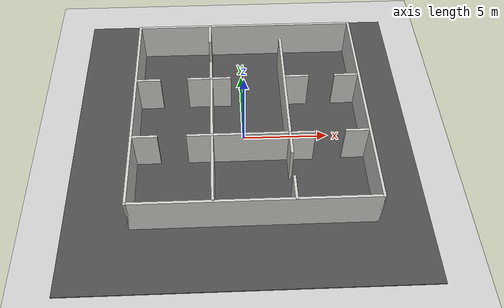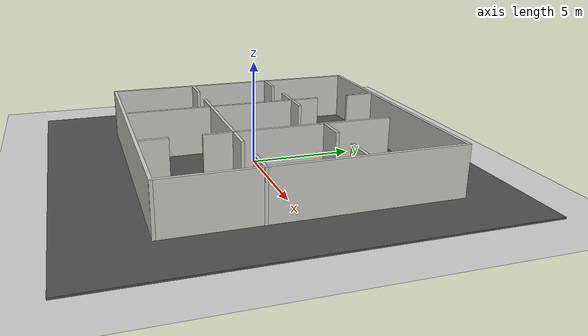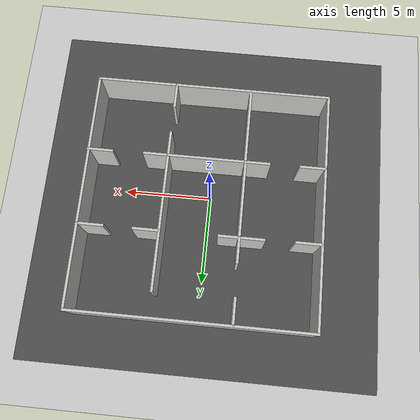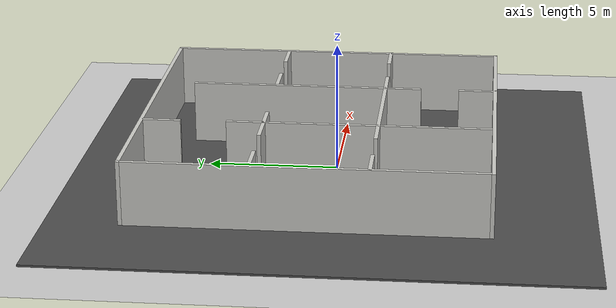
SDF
<sdf version="1.6">
 <world name="default">
  <model name="ground_plane">
   <static>1</static>
   <link name="link">
    <collision name="collision">
     <geometry><plane><normal>0 0 1</normal><size>100 100</size></plane></geometry>
     <surface><friction><ode><mu>100</mu><mu2>50</mu2></ode></friction></surface>
    </collision>
    <visual name="visual">
     <cast_shadows>0</cast_shadows>
     <geometry><plane><normal>0 0 1</normal><size>100 100</size></plane></geometry>
     <material>
      <script><uri>file://media/materials/scripts/gazebo.material</uri><name>Gazebo/Grey</name></script>
     </material>
    </visual>
   </link>
  </model>
  <gravity>0 0 -9.8</gravity>
  <magnetic_field>6e-06 2.3e-05 -4.2e-05</magnetic_field>
  <atmosphere type="adiabatic"/>
  <physics name="default_physics" default="0" type="ode">
   <max_step_size>0.001</max_step_size>
   <real_time_factor>1</real_time_factor>
   <real_time_update_rate>1000</real_time_update_rate>
  </physics>
  <scene><ambient>0.4 0.4 0.4 1</ambient><background>0.7 0.7 0.7 1</background><shadows>1</shadows></scene>
  <spherical_coordinates>
   <surface_model>EARTH_WGS84</surface_model>
   <latitude_deg>0</latitude_deg>
   <longitude_deg>0</longitude_deg>
   <elevation>0</elevation>
   <heading_deg>0</heading_deg>
  </spherical_coordinates>
  <model name="NewWorldSimple">
   <pose>0.34924 0.631189 0 0 -0 0</pose>
   <link name="Wall_1">
    <collision name="Wall_1_Collision">
     <geometry><box><size>13.5 0.15 2.5</size></box></geometry>
     <pose>0 0 1.25 0 -0 0</pose>
    </collision>
    <visual name="Wall_1_Visual">
     <pose>0 0 1.25 0 -0 0</pose>
     <geometry><box><size>13.5 0.15 2.5</size></box></geometry>
     <material>
      <script><uri>file://media/materials/scripts/gazebo.material</uri><name>Gazebo/CeilingTiled</name></script>
      <ambient>1 1 1 1</ambient>
     </material>
     <meta><layer>0</layer></meta>
    </visual>
    <pose>-6.68859 0 0 0 0 -1.5708</pose>
   </link>
   <link name="Wall_14">
    <collision name="Wall_14_Collision">
     <geometry><box><size>1.5 0.15 2.5</size></box></geometry>
     <pose>0 0 1.25 0 -0 0</pose>
    </collision>
    <visual name="Wall_14_Visual">
     <pose>0 0 1.25 0 -0 0</pose>
     <geometry><box><size>1.5 0.15 2.5</size></box></geometry>
     <material>
      <script><uri>file://media/materials/scripts/gazebo.material</uri><name>Gazebo/CeilingTiled</name></script>
      <ambient>1 1 1 1</ambient>
     </material>
     <meta><layer>0</layer></meta>
    </visual>
    <pose>-5.96768 -2.32798 0 0 -0 0</pose>
   </link>
   <link name="Wall_16">
    <collision name="Wall_16_Collision">
     <geometry><box><size>4.367 0.15 2.5</size></box></geometry>
     <pose>0 0 1.25 0 -0 0</pose>
    </collision>
    <visual name="Wall_16_Visual">
     <pose>0 0 1.25 0 -0 0</pose>
     <geometry><box><size>4.367 0.15 2.5</size></box></geometry>
     <material>
      <script><uri>file://media/materials/scripts/gazebo.material</uri><name>Gazebo/CeilingTiled</name></script>
      <ambient>1 1 1 1</ambient>
     </material>
     <meta><layer>0</layer></meta>
    </visual>
    <pose>-2.20045 -0.098908 0 0 -0 1.5708</pose>
   </link>
   <link name="Wall_18">
    <collision name="Wall_18_Collision">
     <geometry><box><size>1.5 0.15 2.5</size></box></geometry>
     <pose>0 0 1.25 0 -0 0</pose>
    </collision>
    <visual name="Wall_18_Visual">
     <pose>0 0 1.25 0 -0 0</pose>
     <geometry><box><size>1.5 0.15 2.5</size></box></geometry>
     <material>
      <script><uri>file://media/materials/scripts/gazebo.material</uri><name>Gazebo/CeilingTiled</name></script>
      <ambient>1 1 1 1</ambient>
     </material>
     <meta><layer>0</layer></meta>
    </visual>
    <pose>-2.87545 2.00959 0 0 -0 3.14159</pose>
   </link>
   <link name="Wall_20">
    <collision name="Wall_20_Collision">
     <geometry><box><size>1.5 0.15 2.5</size></box></geometry>
     <pose>0 0 1.25 0 -0 0</pose>
    </collision>
    <visual name="Wall_20_Visual">
     <pose>0 0 1.25 0 -0 0</pose>
     <geometry><box><size>1.5 0.15 2.5</size></box></geometry>
     <material>
      <script><uri>file://media/materials/scripts/gazebo.material</uri><name>Gazebo/CeilingTiled</name></script>
      <ambient>1 1 1 1</ambient>
     </material>
     <meta><layer>0</layer></meta>
    </visual>
    <pose>-5.96768 1.98126 0 0 -0 0</pose>
   </link>
   <link name="Wall_23">
    <collision name="Wall_23_Collision">
     <geometry><box><size>1.5 0.15 2.5</size></box></geometry>
     <pose>0 0 1.25 0 -0 0</pose>
    </collision>
    <visual name="Wall_23_Visual">
     <pose>0 0 1.25 0 -0 0</pose>
     <geometry><box><size>1.5 0.15 2.5</size></box></geometry>
     <material>
      <script><uri>file://media/materials/scripts/gazebo.material</uri><name>Gazebo/CeilingTiled</name></script>
      <ambient>1 1 1 1</ambient>
     </material>
     <meta><layer>0</layer></meta>
    </visual>
    <pose>-2.25188 5.91207 0 0 0 -1.5708</pose>
   </link>
   <link name="Wall_25">
    <collision name="Wall_25_Collision">
     <geometry><box><size>1.5 0.15 2.5</size></box></geometry>
     <pose>0 0 1.25 0 -0 0</pose>
    </collision>
    <visual name="Wall_25_Visual">
     <pose>0 0 1.25 0 -0 0</pose>
     <geometry><box><size>1.5 0.15 2.5</size></box></geometry>
     <material>
      <script><uri>file://media/materials/scripts/gazebo.material</uri><name>Gazebo/CeilingTiled</name></script>
      <ambient>1 1 1 1</ambient>
     </material>
     <meta><layer>0</layer></meta>
    </visual>
    <pose>-2.20045 2.68459 0 0 -0 1.5708</pose>
   </link>
   <link name="Wall_27">
    <collision name="Wall_27_Collision">
     <geometry><box><size>1.25 0.15 2.5</size></box></geometry>
     <pose>0 0 1.25 0 -0 0</pose>
    </collision>
    <visual name="Wall_27_Visual">
     <pose>0 0 1.25 0 -0 0</pose>
     <geometry><box><size>1.25 0.15 2.5</size></box></geometry>
     <material>
      <script><uri>file://media/materials/scripts/gazebo.material</uri><name>Gazebo/CeilingTiled</name></script>
      <ambient>1 1 1 1</ambient>
     </material>
     <meta><layer>0</layer></meta>
    </visual>
    <pose>-1.65044 2.00959 0 0 -0 0</pose>
   </link>
   <link name="Wall_3">
    <collision name="Wall_3_Collision">
     <geometry><box><size>13.5 0.15 2.5</size></box></geometry>
     <pose>0 0 1.25 0 -0 0</pose>
    </collision>
    <visual name="Wall_3_Visual">
     <pose>0 0 1.25 0 -0 0</pose>
     <geometry><box><size>13.5 0.15 2.5</size></box></geometry>
     <material>
      <script><uri>file://media/materials/scripts/gazebo.material</uri><name>Gazebo/CeilingTiled</name></script>
      <ambient>1 1 1 1</ambient>
     </material>
     <meta><layer>0</layer></meta>
    </visual>
    <pose>-0.013591 6.675 0 0 -0 0</pose>
   </link>
   <link name="Wall_32">
    <collision name="Wall_32_Collision">
     <geometry><box><size>4.5 0.15 2.5</size></box></geometry>
     <pose>0 0 1.25 0 -0 0</pose>
    </collision>
    <visual name="Wall_32_Visual">
     <pose>0 0 1.25 0 -0 0</pose>
     <geometry><box><size>4.5 0.15 2.5</size></box></geometry>
     <material>
      <script><uri>file://media/materials/scripts/gazebo.material</uri><name>Gazebo/CeilingTiled</name></script>
      <ambient>1 1 1 1</ambient>
     </material>
     <meta><layer>0</layer></meta>
    </visual>
    <pose>-2.19023 -4.4978 0 0 -0 1.5708</pose>
   </link>
   <link name="Wall_34">
    <collision name="Wall_34_Collision">
     <geometry><box><size>1.5 0.15 2.5</size></box></geometry>
     <pose>0 0 1.25 0 -0 0</pose>
    </collision>
    <visual name="Wall_34_Visual">
     <pose>0 0 1.25 0 -0 0</pose>
     <geometry><box><size>1.5 0.15 2.5</size></box></geometry>
     <material>
      <script><uri>file://media/materials/scripts/gazebo.material</uri><name>Gazebo/CeilingTiled</name></script>
      <ambient>1 1 1 1</ambient>
     </material>
     <meta><layer>0</layer></meta>
    </visual>
    <pose>-2.86523 -2.3228 0 0 -0 3.14159</pose>
   </link>
   <link name="Wall_36">
    <collision name="Wall_36_Collision">
     <geometry><box><size>4.5 0.15 2.5</size></box></geometry>
     <pose>0 0 1.25 0 -0 0</pose>
    </collision>
    <visual name="Wall_36_Visual">
     <pose>0 0 1.25 0 -0 0</pose>
     <geometry><box><size>4.5 0.15 2.5</size></box></geometry>
     <material>
      <script><uri>file://media/materials/scripts/gazebo.material</uri><name>Gazebo/CeilingTiled</name></script>
      <ambient>1 1 1 1</ambient>
     </material>
     <meta><layer>0</layer></meta>
    </visual>
    <pose>-0.015234 -2.3228 0 0 -0 0</pose>
   </link>
   <link name="Wall_38">
    <collision name="Wall_38_Collision">
     <geometry><box><size>1.5 0.15 2.5</size></box></geometry>
     <pose>0 0 1.25 0 -0 0</pose>
    </collision>
    <visual name="Wall_38_Visual">
     <pose>0 0 1.25 0 -0 0</pose>
     <geometry><box><size>1.5 0.15 2.5</size></box></geometry>
     <material>
      <script><uri>file://media/materials/scripts/gazebo.material</uri><name>Gazebo/CeilingTiled</name></script>
      <ambient>1 1 1 1</ambient>
     </material>
     <meta><layer>0</layer></meta>
    </visual>
    <pose>2.15977 -2.9978 0 0 0 -1.5708</pose>
   </link>
   <link name="Wall_40">
    <collision name="Wall_40_Collision">
     <geometry><box><size>1.5 0.15 2.5</size></box></geometry>
     <pose>0 0 1.25 0 -0 0</pose>
    </collision>
    <visual name="Wall_40_Visual">
     <pose>0 0 1.25 0 -0 0</pose>
     <geometry><box><size>1.5 0.15 2.5</size></box></geometry>
     <material>
      <script><uri>file://media/materials/scripts/gazebo.material</uri><name>Gazebo/CeilingTiled</name></script>
      <ambient>1 1 1 1</ambient>
     </material>
     <meta><layer>0</layer></meta>
    </visual>
    <pose>2.13674 -5.98666 0 0 -0 1.5708</pose>
   </link>
   <link name="Wall_42">
    <collision name="Wall_42_Collision">
     <geometry><box><size>7.75 0.15 2.5</size></box></geometry>
     <pose>0 0 1.25 0 -0 0</pose>
    </collision>
    <visual name="Wall_42_Visual">
     <pose>0 0 1.25 0 -0 0</pose>
     <geometry><box><size>7.75 0.15 2.5</size></box></geometry>
     <material>
      <script><uri>file://media/materials/scripts/gazebo.material</uri><name>Gazebo/CeilingTiled</name></script>
      <ambient>1 1 1 1</ambient>
     </material>
     <meta><layer>0</layer></meta>
    </visual>
    <pose>2.15977 1.4772 0 0 -0 1.5708</pose>
   </link>
   <link name="Wall_45">
    <collision name="Wall_45_Collision">
     <geometry><box><size>1.5 0.15 2.5</size></box></geometry>
     <pose>0 0 1.25 0 -0 0</pose>
    </collision>
    <visual name="Wall_45_Visual">
     <pose>0 0 1.25 0 -0 0</pose>
     <geometry><box><size>1.5 0.15 2.5</size></box></geometry>
     <material>
      <script><uri>file://media/materials/scripts/gazebo.material</uri><name>Gazebo/CeilingTiled</name></script>
      <ambient>1 1 1 1</ambient>
     </material>
     <meta><layer>0</layer></meta>
    </visual>
    <pose>2.89495 2.03107 0 0 -0 0</pose>
   </link>
   <link name="Wall_47">
    <collision name="Wall_47_Collision">
     <geometry><box><size>1.5 0.15 2.5</size></box></geometry>
     <pose>0 0 1.25 0 -0 0</pose>
    </collision>
    <visual name="Wall_47_Visual">
     <pose>0 0 1.25 0 -0 0</pose>
     <geometry><box><size>1.5 0.15 2.5</size></box></geometry>
     <material>
      <script><uri>file://media/materials/scripts/gazebo.material</uri><name>Gazebo/CeilingTiled</name></script>
      <ambient>1 1 1 1</ambient>
     </material>
     <meta><layer>0</layer></meta>
    </visual>
    <pose>5.93398 2.03107 0 0 -0 3.14159</pose>
   </link>
   <link name="Wall_49">
    <collision name="Wall_49_Collision">
     <geometry><box><size>1.5 0.15 2.5</size></box></geometry>
     <pose>0 0 1.25 0 -0 0</pose>
    </collision>
    <visual name="Wall_49_Visual">
     <pose>0 0 1.25 0 -0 0</pose>
     <geometry><box><size>1.5 0.15 2.5</size></box></geometry>
     <material>
      <script><uri>file://media/materials/scripts/gazebo.material</uri><name>Gazebo/CeilingTiled</name></script>
      <ambient>1 1 1 1</ambient>
     </material>
     <meta><layer>0</layer></meta>
    </visual>
    <pose>2.83477 -2.3228 0 0 -0 0</pose>
   </link>
   <link name="Wall_5">
    <collision name="Wall_5_Collision">
     <geometry><box><size>13.5 0.15 2.5</size></box></geometry>
     <pose>0 0 1.25 0 -0 0</pose>
    </collision>
    <visual name="Wall_5_Visual">
     <pose>0 0 1.25 0 -0 0</pose>
     <geometry><box><size>13.5 0.15 2.5</size></box></geometry>
     <material>
      <script><uri>file://media/materials/scripts/gazebo.material</uri><name>Gazebo/CeilingTiled</name></script>
      <ambient>1 1 1 1</ambient>
     </material>
     <meta><layer>0</layer></meta>
    </visual>
    <pose>6.66141 0 0 0 0 -1.5708</pose>
   </link>
   <link name="Wall_51">
    <collision name="Wall_51_Collision">
     <geometry><box><size>1.5 0.15 2.5</size></box></geometry>
     <pose>0 0 1.25 0 -0 0</pose>
    </collision>
    <visual name="Wall_51_Visual">
     <pose>0 0 1.25 0 -0 0</pose>
     <geometry><box><size>1.5 0.15 2.5</size></box></geometry>
     <material>
      <script><uri>file://media/materials/scripts/gazebo.material</uri><name>Gazebo/CeilingTiled</name></script>
      <ambient>1 1 1 1</ambient>
     </material>
     <meta><layer>0</layer></meta>
    </visual>
    <pose>6.01378 -2.27816 0 0 -0 3.14159</pose>
   </link>
   <link name="Wall_7">
    <collision name="Wall_7_Collision">
     <geometry><box><size>13.5004 0.15 2.5</size></box></geometry>
     <pose>0 0 1.25 0 -0 0</pose>
    </collision>
    <visual name="Wall_7_Visual">
     <pose>0 0 1.25 0 -0 0</pose>
     <geometry><box><size>13.5004 0.15 2.5</size></box></geometry>
     <material>
      <script><uri>file://media/materials/scripts/gazebo.material</uri><name>Gazebo/CeilingTiled</name></script>
      <ambient>1 1 1 1</ambient>
     </material>
     <meta><layer>0</layer></meta>
    </visual>
    <pose>-0.013591 -6.675 0 0 -0 0</pose>
   </link>
   <static>1</static>
  </model>
  <model name="asphalt_plane">
   <static>1</static>
   <link name="link">
    <collision name="collision"><geometry><box><size>20 20 0.1</size></box></geometry></collision>
    <visual name="visual">
     <cast_shadows>0</cast_shadows>
     <geometry><box><size>20 20 0.1</size></box></geometry>
     <material>
      <script>
       <uri>model://asphalt_plane/materials/scripts</uri>
       <uri>model://asphalt_plane/materials/textures</uri>
       <name>vrc/asphalt</name>
      </script>
     </material>
    </visual>
   </link>
   <pose>-0.070386 0.135704 0 0 -0 0</pose>
  </model>
  <light name="user_directional_light_0" type="directional">
   <pose>0.611769 -3.67898 1 0 -0 0</pose>
   <diffuse>0.5 0.5 0.5 1</diffuse>
   <specular>0.1 0.1 0.1 1</specular>
   <direction>0.1 0.1 -0.9</direction>
   <attenuation>
    <range>20</range>
    <constant>0.5</constant>
    <linear>0.01</linear>
    <quadratic>0.001</quadratic>
   </attenuation>
  </light>
  <light name="user_directional_light_1" type="directional">
   <pose>0.695435 -4.14078 1 0 -0 0</pose>
   <diffuse>0.5 0.5 0.5 1</diffuse>
   <specular>0.1 0.1 0.1 1</specular>
   <direction>0.1 0.1 -0.9</direction>
   <attenuation>
    <range>20</range>
    <constant>0.5</constant>
    <linear>0.01</linear>
    <quadratic>0.001</quadratic>
   </attenuation>
  </light>
  <light name="user_spot_light_0" type="spot">
   <pose>0.575856 -5.1905 1 0 -0 0</pose>
   <diffuse>0.5 0.5 0.5 1</diffuse>
   <specular>0.1 0.1 0.1 1</specular>
   <direction>0 0 -1</direction>
   <attenuation>
    <range>20</range>
    <constant>0.5</constant>
    <linear>0.01</linear>
    <quadratic>0.001</quadratic>
   </attenuation>
   <cast_shadows>0</cast_shadows>
   <spot><inner_angle>0.6</inner_angle><outer_angle>1</outer_angle><falloff>1</falloff></spot>
  </light>
 </world>
</sdf>
